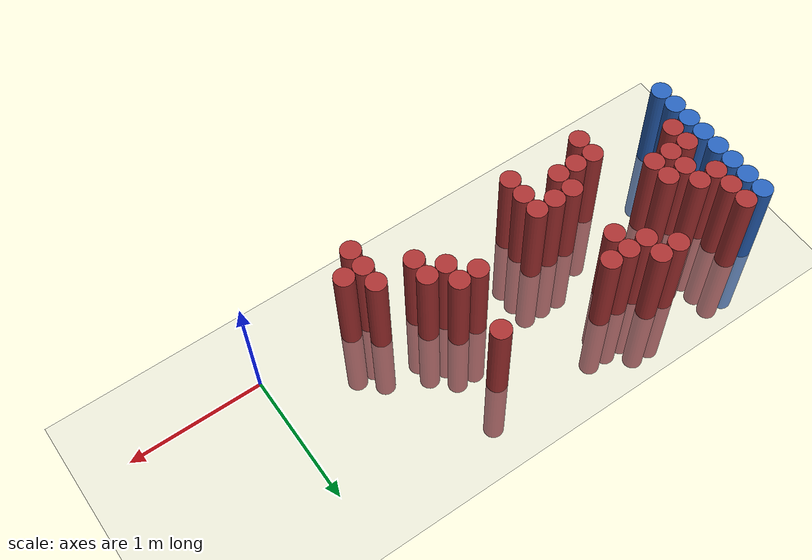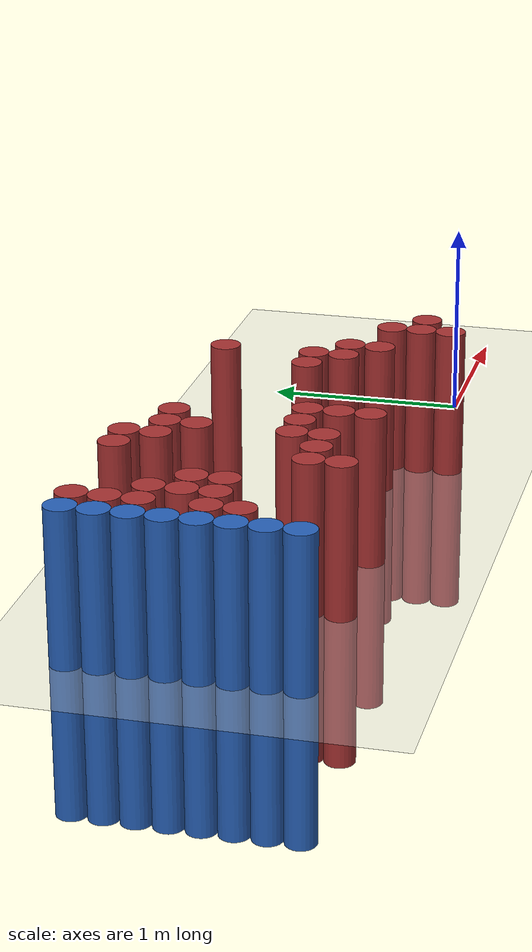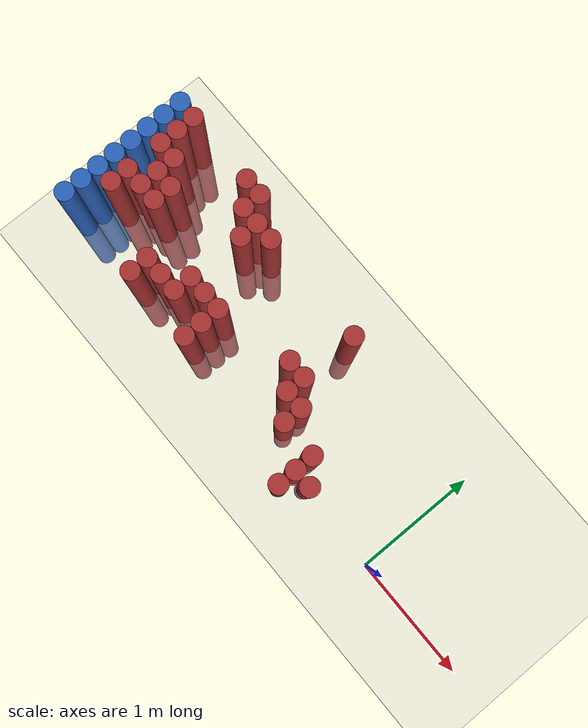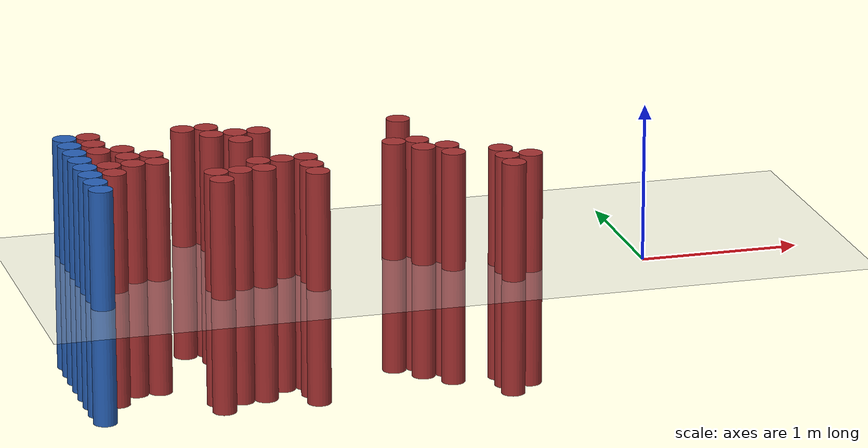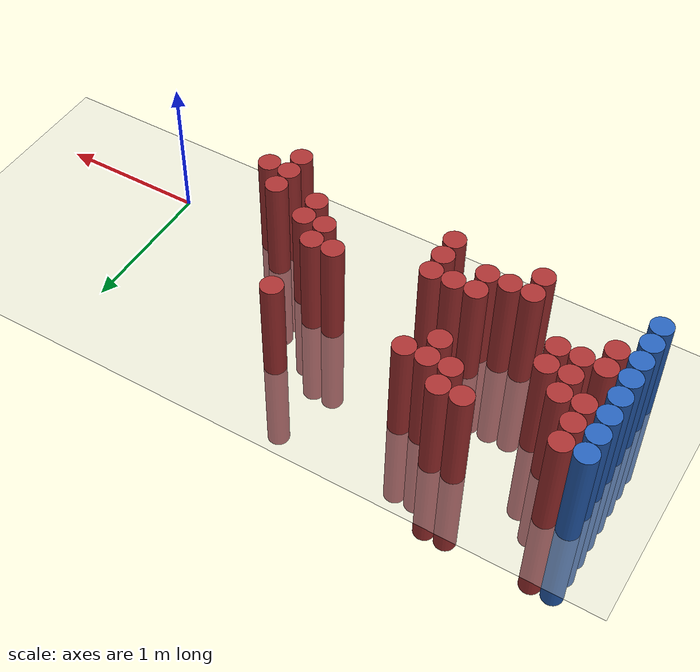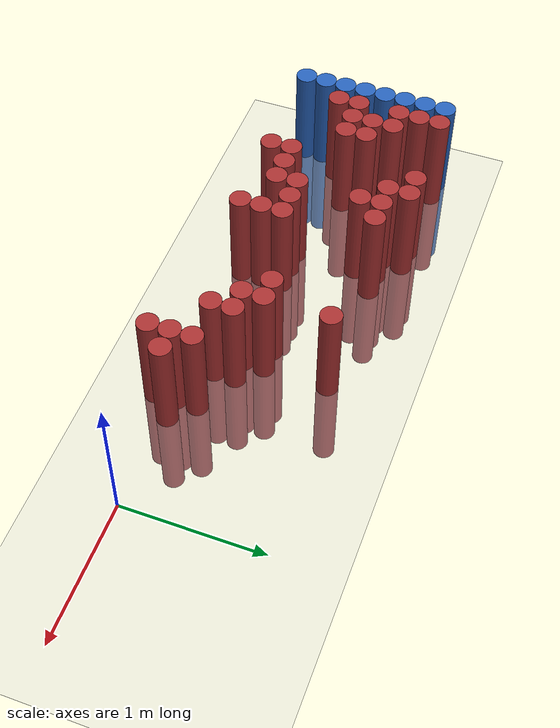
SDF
<sdf version="1.6">
 <world name="default">
  <model name="ground_plane">
   <static>1</static>
   <link name="link">
    <collision name="collision">
     <geometry><plane><normal>0 0 1</normal><size>100 100</size></plane></geometry>
     <surface><friction><ode><mu>100</mu><mu2>50</mu2></ode></friction></surface>
    </collision>
    <visual name="visual">
     <cast_shadows>0</cast_shadows>
     <geometry><plane><normal>0 0 1</normal><size>100 100</size></plane></geometry>
     <material>
      <script><uri>file://media/materials/scripts/gazebo.material</uri><name>Gazebo/Grey</name></script>
     </material>
    </visual>
   </link>
  </model>
  <model name="unit_cylinder_115">
   <static>1</static>
   <pose>-3.425000 0.025000 0.000000 0.000000 0.000000 0.000000</pose>
   <link name="link">
    <inertial>
     <mass>1</mass>
     <inertia><ixx>0.145833</ixx><ixy>0</ixy><ixz>0</ixz><iyy>0.145833</iyy><iyz>0</iyz><izz>0.125</izz></inertia>
    </inertial>
    <collision name="collision">
     <geometry><cylinder><radius>0.075000</radius><length>1.5</length></cylinder></geometry>
    </collision>
    <visual name="visual">
     <geometry><cylinder><radius>0.075000</radius><length>1.5</length></cylinder></geometry>
     <material>
      <ambient>0.152000 0.379000 0.720000 1</ambient>
      <diffuse>0.152000 0.379000 0.720000 1</diffuse>
     </material>
     <material>
      <script><name>Gazebo/Grey</name><uri>file://media/materials/scripts/gazebo.material</uri></script>
     </material>
    </visual>
   </link>
  </model>
  <model name="unit_cylinder_117">
   <static>1</static>
   <pose>-3.425000 0.175000 0.000000 0.000000 0.000000 0.000000</pose>
   <link name="link">
    <inertial>
     <mass>1</mass>
     <inertia><ixx>0.145833</ixx><ixy>0</ixy><ixz>0</ixz><iyy>0.145833</iyy><iyz>0</iyz><izz>0.125</izz></inertia>
    </inertial>
    <collision name="collision">
     <geometry><cylinder><radius>0.075000</radius><length>1.5</length></cylinder></geometry>
    </collision>
    <visual name="visual">
     <geometry><cylinder><radius>0.075000</radius><length>1.5</length></cylinder></geometry>
     <material>
      <ambient>0.152000 0.379000 0.720000 1</ambient>
      <diffuse>0.152000 0.379000 0.720000 1</diffuse>
     </material>
     <material>
      <script><name>Gazebo/Grey</name><uri>file://media/materials/scripts/gazebo.material</uri></script>
     </material>
    </visual>
   </link>
  </model>
  <model name="unit_cylinder_119">
   <static>1</static>
   <pose>-3.425000 0.325000 0.000000 0.000000 0.000000 0.000000</pose>
   <link name="link">
    <inertial>
     <mass>1</mass>
     <inertia><ixx>0.145833</ixx><ixy>0</ixy><ixz>0</ixz><iyy>0.145833</iyy><iyz>0</iyz><izz>0.125</izz></inertia>
    </inertial>
    <collision name="collision">
     <geometry><cylinder><radius>0.075000</radius><length>1.5</length></cylinder></geometry>
    </collision>
    <visual name="visual">
     <geometry><cylinder><radius>0.075000</radius><length>1.5</length></cylinder></geometry>
     <material>
      <ambient>0.152000 0.379000 0.720000 1</ambient>
      <diffuse>0.152000 0.379000 0.720000 1</diffuse>
     </material>
     <material>
      <script><name>Gazebo/Grey</name><uri>file://media/materials/scripts/gazebo.material</uri></script>
     </material>
    </visual>
   </link>
  </model>
  <model name="unit_cylinder_121">
   <static>1</static>
   <pose>-3.425000 0.475000 0.000000 0.000000 0.000000 0.000000</pose>
   <link name="link">
    <inertial>
     <mass>1</mass>
     <inertia><ixx>0.145833</ixx><ixy>0</ixy><ixz>0</ixz><iyy>0.145833</iyy><iyz>0</iyz><izz>0.125</izz></inertia>
    </inertial>
    <collision name="collision">
     <geometry><cylinder><radius>0.075000</radius><length>1.5</length></cylinder></geometry>
    </collision>
    <visual name="visual">
     <geometry><cylinder><radius>0.075000</radius><length>1.5</length></cylinder></geometry>
     <material>
      <ambient>0.152000 0.379000 0.720000 1</ambient>
      <diffuse>0.152000 0.379000 0.720000 1</diffuse>
     </material>
     <material>
      <script><name>Gazebo/Grey</name><uri>file://media/materials/scripts/gazebo.material</uri></script>
     </material>
    </visual>
   </link>
  </model>
  <model name="unit_cylinder_123">
   <static>1</static>
   <pose>-3.425000 0.625000 0.000000 0.000000 0.000000 0.000000</pose>
   <link name="link">
    <inertial>
     <mass>1</mass>
     <inertia><ixx>0.145833</ixx><ixy>0</ixy><ixz>0</ixz><iyy>0.145833</iyy><iyz>0</iyz><izz>0.125</izz></inertia>
    </inertial>
    <collision name="collision">
     <geometry><cylinder><radius>0.075000</radius><length>1.5</length></cylinder></geometry>
    </collision>
    <visual name="visual">
     <geometry><cylinder><radius>0.075000</radius><length>1.5</length></cylinder></geometry>
     <material>
      <ambient>0.152000 0.379000 0.720000 1</ambient>
      <diffuse>0.152000 0.379000 0.720000 1</diffuse>
     </material>
     <material>
      <script><name>Gazebo/Grey</name><uri>file://media/materials/scripts/gazebo.material</uri></script>
     </material>
    </visual>
   </link>
  </model>
  <model name="unit_cylinder_125">
   <static>1</static>
   <pose>-3.425000 0.775000 0.000000 0.000000 0.000000 0.000000</pose>
   <link name="link">
    <inertial>
     <mass>1</mass>
     <inertia><ixx>0.145833</ixx><ixy>0</ixy><ixz>0</ixz><iyy>0.145833</iyy><iyz>0</iyz><izz>0.125</izz></inertia>
    </inertial>
    <collision name="collision">
     <geometry><cylinder><radius>0.075000</radius><length>1.5</length></cylinder></geometry>
    </collision>
    <visual name="visual">
     <geometry><cylinder><radius>0.075000</radius><length>1.5</length></cylinder></geometry>
     <material>
      <ambient>0.152000 0.379000 0.720000 1</ambient>
      <diffuse>0.152000 0.379000 0.720000 1</diffuse>
     </material>
     <material>
      <script><name>Gazebo/Grey</name><uri>file://media/materials/scripts/gazebo.material</uri></script>
     </material>
    </visual>
   </link>
  </model>
  <model name="unit_cylinder_127">
   <static>1</static>
   <pose>-3.425000 0.925000 0.000000 0.000000 0.000000 0.000000</pose>
   <link name="link">
    <inertial>
     <mass>1</mass>
     <inertia><ixx>0.145833</ixx><ixy>0</ixy><ixz>0</ixz><iyy>0.145833</iyy><iyz>0</iyz><izz>0.125</izz></inertia>
    </inertial>
    <collision name="collision">
     <geometry><cylinder><radius>0.075000</radius><length>1.5</length></cylinder></geometry>
    </collision>
    <visual name="visual">
     <geometry><cylinder><radius>0.075000</radius><length>1.5</length></cylinder></geometry>
     <material>
      <ambient>0.152000 0.379000 0.720000 1</ambient>
      <diffuse>0.152000 0.379000 0.720000 1</diffuse>
     </material>
     <material>
      <script><name>Gazebo/Grey</name><uri>file://media/materials/scripts/gazebo.material</uri></script>
     </material>
    </visual>
   </link>
  </model>
  <model name="unit_cylinder_129">
   <static>1</static>
   <pose>-3.425000 1.075000 0.000000 0.000000 0.000000 0.000000</pose>
   <link name="link">
    <inertial>
     <mass>1</mass>
     <inertia><ixx>0.145833</ixx><ixy>0</ixy><ixz>0</ixz><iyy>0.145833</iyy><iyz>0</iyz><izz>0.125</izz></inertia>
    </inertial>
    <collision name="collision">
     <geometry><cylinder><radius>0.075000</radius><length>1.5</length></cylinder></geometry>
    </collision>
    <visual name="visual">
     <geometry><cylinder><radius>0.075000</radius><length>1.5</length></cylinder></geometry>
     <material>
      <ambient>0.152000 0.379000 0.720000 1</ambient>
      <diffuse>0.152000 0.379000 0.720000 1</diffuse>
     </material>
     <material>
      <script><name>Gazebo/Grey</name><uri>file://media/materials/scripts/gazebo.material</uri></script>
     </material>
    </visual>
   </link>
  </model>
  <model name="unit_cylinder_221">
   <static>1</static>
   <pose>-3.425000 0.025000 0.000000 0.000000 0.000000 0.000000</pose>
   <link name="link">
    <inertial>
     <mass>1</mass>
     <inertia><ixx>0.145833</ixx><ixy>0</ixy><ixz>0</ixz><iyy>0.145833</iyy><iyz>0</iyz><izz>0.125</izz></inertia>
    </inertial>
    <collision name="collision">
     <geometry><cylinder><radius>0.075000</radius><length>1.5</length></cylinder></geometry>
    </collision>
    <visual name="visual">
     <geometry><cylinder><radius>0.075000</radius><length>1.5</length></cylinder></geometry>
     <material>
      <ambient>0.152000 0.379000 0.720000 1</ambient>
      <diffuse>0.152000 0.379000 0.720000 1</diffuse>
     </material>
     <material>
      <script><name>Gazebo/Grey</name><uri>file://media/materials/scripts/gazebo.material</uri></script>
     </material>
    </visual>
   </link>
  </model>
  <model name="unit_cylinder_222">
   <static>1</static>
   <pose>-3.425000 0.175000 0.000000 0.000000 0.000000 0.000000</pose>
   <link name="link">
    <inertial>
     <mass>1</mass>
     <inertia><ixx>0.145833</ixx><ixy>0</ixy><ixz>0</ixz><iyy>0.145833</iyy><iyz>0</iyz><izz>0.125</izz></inertia>
    </inertial>
    <collision name="collision">
     <geometry><cylinder><radius>0.075000</radius><length>1.5</length></cylinder></geometry>
    </collision>
    <visual name="visual">
     <geometry><cylinder><radius>0.075000</radius><length>1.5</length></cylinder></geometry>
     <material>
      <ambient>0.152000 0.379000 0.720000 1</ambient>
      <diffuse>0.152000 0.379000 0.720000 1</diffuse>
     </material>
     <material>
      <script><name>Gazebo/Grey</name><uri>file://media/materials/scripts/gazebo.material</uri></script>
     </material>
    </visual>
   </link>
  </model>
  <model name="unit_cylinder_223">
   <static>1</static>
   <pose>-3.425000 0.325000 0.000000 0.000000 0.000000 0.000000</pose>
   <link name="link">
    <inertial>
     <mass>1</mass>
     <inertia><ixx>0.145833</ixx><ixy>0</ixy><ixz>0</ixz><iyy>0.145833</iyy><iyz>0</iyz><izz>0.125</izz></inertia>
    </inertial>
    <collision name="collision">
     <geometry><cylinder><radius>0.075000</radius><length>1.5</length></cylinder></geometry>
    </collision>
    <visual name="visual">
     <geometry><cylinder><radius>0.075000</radius><length>1.5</length></cylinder></geometry>
     <material>
      <ambient>0.152000 0.379000 0.720000 1</ambient>
      <diffuse>0.152000 0.379000 0.720000 1</diffuse>
     </material>
     <material>
      <script><name>Gazebo/Grey</name><uri>file://media/materials/scripts/gazebo.material</uri></script>
     </material>
    </visual>
   </link>
  </model>
  <model name="unit_cylinder_224">
   <static>1</static>
   <pose>-3.425000 0.475000 0.000000 0.000000 0.000000 0.000000</pose>
   <link name="link">
    <inertial>
     <mass>1</mass>
     <inertia><ixx>0.145833</ixx><ixy>0</ixy><ixz>0</ixz><iyy>0.145833</iyy><iyz>0</iyz><izz>0.125</izz></inertia>
    </inertial>
    <collision name="collision">
     <geometry><cylinder><radius>0.075000</radius><length>1.5</length></cylinder></geometry>
    </collision>
    <visual name="visual">
     <geometry><cylinder><radius>0.075000</radius><length>1.5</length></cylinder></geometry>
     <material>
      <ambient>0.152000 0.379000 0.720000 1</ambient>
      <diffuse>0.152000 0.379000 0.720000 1</diffuse>
     </material>
     <material>
      <script><name>Gazebo/Grey</name><uri>file://media/materials/scripts/gazebo.material</uri></script>
     </material>
    </visual>
   </link>
  </model>
  <model name="unit_cylinder_225">
   <static>1</static>
   <pose>-3.425000 0.625000 0.000000 0.000000 0.000000 0.000000</pose>
   <link name="link">
    <inertial>
     <mass>1</mass>
     <inertia><ixx>0.145833</ixx><ixy>0</ixy><ixz>0</ixz><iyy>0.145833</iyy><iyz>0</iyz><izz>0.125</izz></inertia>
    </inertial>
    <collision name="collision">
     <geometry><cylinder><radius>0.075000</radius><length>1.5</length></cylinder></geometry>
    </collision>
    <visual name="visual">
     <geometry><cylinder><radius>0.075000</radius><length>1.5</length></cylinder></geometry>
     <material>
      <ambient>0.152000 0.379000 0.720000 1</ambient>
      <diffuse>0.152000 0.379000 0.720000 1</diffuse>
     </material>
     <material>
      <script><name>Gazebo/Grey</name><uri>file://media/materials/scripts/gazebo.material</uri></script>
     </material>
    </visual>
   </link>
  </model>
  <model name="unit_cylinder_226">
   <static>1</static>
   <pose>-3.425000 0.775000 0.000000 0.000000 0.000000 0.000000</pose>
   <link name="link">
    <inertial>
     <mass>1</mass>
     <inertia><ixx>0.145833</ixx><ixy>0</ixy><ixz>0</ixz><iyy>0.145833</iyy><iyz>0</iyz><izz>0.125</izz></inertia>
    </inertial>
    <collision name="collision">
     <geometry><cylinder><radius>0.075000</radius><length>1.5</length></cylinder></geometry>
    </collision>
    <visual name="visual">
     <geometry><cylinder><radius>0.075000</radius><length>1.5</length></cylinder></geometry>
     <material>
      <ambient>0.152000 0.379000 0.720000 1</ambient>
      <diffuse>0.152000 0.379000 0.720000 1</diffuse>
     </material>
     <material>
      <script><name>Gazebo/Grey</name><uri>file://media/materials/scripts/gazebo.material</uri></script>
     </material>
    </visual>
   </link>
  </model>
  <model name="unit_cylinder_227">
   <static>1</static>
   <pose>-3.425000 0.925000 0.000000 0.000000 0.000000 0.000000</pose>
   <link name="link">
    <inertial>
     <mass>1</mass>
     <inertia><ixx>0.145833</ixx><ixy>0</ixy><ixz>0</ixz><iyy>0.145833</iyy><iyz>0</iyz><izz>0.125</izz></inertia>
    </inertial>
    <collision name="collision">
     <geometry><cylinder><radius>0.075000</radius><length>1.5</length></cylinder></geometry>
    </collision>
    <visual name="visual">
     <geometry><cylinder><radius>0.075000</radius><length>1.5</length></cylinder></geometry>
     <material>
      <ambient>0.152000 0.379000 0.720000 1</ambient>
      <diffuse>0.152000 0.379000 0.720000 1</diffuse>
     </material>
     <material>
      <script><name>Gazebo/Grey</name><uri>file://media/materials/scripts/gazebo.material</uri></script>
     </material>
    </visual>
   </link>
  </model>
  <model name="unit_cylinder_228">
   <static>1</static>
   <pose>-3.425000 1.075000 0.000000 0.000000 0.000000 0.000000</pose>
   <link name="link">
    <inertial>
     <mass>1</mass>
     <inertia><ixx>0.145833</ixx><ixy>0</ixy><ixz>0</ixz><iyy>0.145833</iyy><iyz>0</iyz><izz>0.125</izz></inertia>
    </inertial>
    <collision name="collision">
     <geometry><cylinder><radius>0.075000</radius><length>1.5</length></cylinder></geometry>
    </collision>
    <visual name="visual">
     <geometry><cylinder><radius>0.075000</radius><length>1.5</length></cylinder></geometry>
     <material>
      <ambient>0.152000 0.379000 0.720000 1</ambient>
      <diffuse>0.152000 0.379000 0.720000 1</diffuse>
     </material>
     <material>
      <script><name>Gazebo/Grey</name><uri>file://media/materials/scripts/gazebo.material</uri></script>
     </material>
    </visual>
   </link>
  </model>
  <model name="unit_cylinder_262">
   <static>1</static>
   <pose>-3.275000 0.325000 0.000000 0.000000 0.000000 0.000000</pose>
   <link name="link">
    <inertial>
     <mass>1</mass>
     <inertia><ixx>0.145833</ixx><ixy>0</ixy><ixz>0</ixz><iyy>0.145833</iyy><iyz>0</iyz><izz>0.125</izz></inertia>
    </inertial>
    <collision name="collision">
     <geometry><cylinder><radius>0.075000</radius><length>1.5</length></cylinder></geometry>
    </collision>
    <visual name="visual">
     <geometry><cylinder><radius>0.075000</radius><length>1.5</length></cylinder></geometry>
     <material>
      <ambient>0.648000 0.192000 0.192000 1</ambient>
      <diffuse>0.648000 0.192000 0.192000 1</diffuse>
     </material>
     <material>
      <script><name>Gazebo/Grey</name><uri>file://media/materials/scripts/gazebo.material</uri></script>
     </material>
    </visual>
   </link>
  </model>
  <model name="unit_cylinder_263">
   <static>1</static>
   <pose>-3.275000 0.475000 0.000000 0.000000 0.000000 0.000000</pose>
   <link name="link">
    <inertial>
     <mass>1</mass>
     <inertia><ixx>0.145833</ixx><ixy>0</ixy><ixz>0</ixz><iyy>0.145833</iyy><iyz>0</iyz><izz>0.125</izz></inertia>
    </inertial>
    <collision name="collision">
     <geometry><cylinder><radius>0.075000</radius><length>1.5</length></cylinder></geometry>
    </collision>
    <visual name="visual">
     <geometry><cylinder><radius>0.075000</radius><length>1.5</length></cylinder></geometry>
     <material>
      <ambient>0.648000 0.192000 0.192000 1</ambient>
      <diffuse>0.648000 0.192000 0.192000 1</diffuse>
     </material>
     <material>
      <script><name>Gazebo/Grey</name><uri>file://media/materials/scripts/gazebo.material</uri></script>
     </material>
    </visual>
   </link>
  </model>
  <model name="unit_cylinder_264">
   <static>1</static>
   <pose>-3.275000 0.775000 0.000000 0.000000 0.000000 0.000000</pose>
   <link name="link">
    <inertial>
     <mass>1</mass>
     <inertia><ixx>0.145833</ixx><ixy>0</ixy><ixz>0</ixz><iyy>0.145833</iyy><iyz>0</iyz><izz>0.125</izz></inertia>
    </inertial>
    <collision name="collision">
     <geometry><cylinder><radius>0.075000</radius><length>1.5</length></cylinder></geometry>
    </collision>
    <visual name="visual">
     <geometry><cylinder><radius>0.075000</radius><length>1.5</length></cylinder></geometry>
     <material>
      <ambient>0.648000 0.192000 0.192000 1</ambient>
      <diffuse>0.648000 0.192000 0.192000 1</diffuse>
     </material>
     <material>
      <script><name>Gazebo/Grey</name><uri>file://media/materials/scripts/gazebo.material</uri></script>
     </material>
    </visual>
   </link>
  </model>
  <model name="unit_cylinder_265">
   <static>1</static>
   <pose>-3.275000 0.925000 0.000000 0.000000 0.000000 0.000000</pose>
   <link name="link">
    <inertial>
     <mass>1</mass>
     <inertia><ixx>0.145833</ixx><ixy>0</ixy><ixz>0</ixz><iyy>0.145833</iyy><iyz>0</iyz><izz>0.125</izz></inertia>
    </inertial>
    <collision name="collision">
     <geometry><cylinder><radius>0.075000</radius><length>1.5</length></cylinder></geometry>
    </collision>
    <visual name="visual">
     <geometry><cylinder><radius>0.075000</radius><length>1.5</length></cylinder></geometry>
     <material>
      <ambient>0.648000 0.192000 0.192000 1</ambient>
      <diffuse>0.648000 0.192000 0.192000 1</diffuse>
     </material>
     <material>
      <script><name>Gazebo/Grey</name><uri>file://media/materials/scripts/gazebo.material</uri></script>
     </material>
    </visual>
   </link>
  </model>
  <model name="unit_cylinder_266">
   <static>1</static>
   <pose>-3.275000 1.075000 0.000000 0.000000 0.000000 0.000000</pose>
   <link name="link">
    <inertial>
     <mass>1</mass>
     <inertia><ixx>0.145833</ixx><ixy>0</ixy><ixz>0</ixz><iyy>0.145833</iyy><iyz>0</iyz><izz>0.125</izz></inertia>
    </inertial>
    <collision name="collision">
     <geometry><cylinder><radius>0.075000</radius><length>1.5</length></cylinder></geometry>
    </collision>
    <visual name="visual">
     <geometry><cylinder><radius>0.075000</radius><length>1.5</length></cylinder></geometry>
     <material>
      <ambient>0.648000 0.192000 0.192000 1</ambient>
      <diffuse>0.648000 0.192000 0.192000 1</diffuse>
     </material>
     <material>
      <script><name>Gazebo/Grey</name><uri>file://media/materials/scripts/gazebo.material</uri></script>
     </material>
    </visual>
   </link>
  </model>
  <model name="unit_cylinder_278">
   <static>1</static>
   <pose>-3.125000 0.475000 0.000000 0.000000 0.000000 0.000000</pose>
   <link name="link">
    <inertial>
     <mass>1</mass>
     <inertia><ixx>0.145833</ixx><ixy>0</ixy><ixz>0</ixz><iyy>0.145833</iyy><iyz>0</iyz><izz>0.125</izz></inertia>
    </inertial>
    <collision name="collision">
     <geometry><cylinder><radius>0.075000</radius><length>1.5</length></cylinder></geometry>
    </collision>
    <visual name="visual">
     <geometry><cylinder><radius>0.075000</radius><length>1.5</length></cylinder></geometry>
     <material>
      <ambient>0.648000 0.192000 0.192000 1</ambient>
      <diffuse>0.648000 0.192000 0.192000 1</diffuse>
     </material>
     <material>
      <script><name>Gazebo/Grey</name><uri>file://media/materials/scripts/gazebo.material</uri></script>
     </material>
    </visual>
   </link>
  </model>
  <model name="unit_cylinder_279">
   <static>1</static>
   <pose>-3.125000 0.625000 0.000000 0.000000 0.000000 0.000000</pose>
   <link name="link">
    <inertial>
     <mass>1</mass>
     <inertia><ixx>0.145833</ixx><ixy>0</ixy><ixz>0</ixz><iyy>0.145833</iyy><iyz>0</iyz><izz>0.125</izz></inertia>
    </inertial>
    <collision name="collision">
     <geometry><cylinder><radius>0.075000</radius><length>1.5</length></cylinder></geometry>
    </collision>
    <visual name="visual">
     <geometry><cylinder><radius>0.075000</radius><length>1.5</length></cylinder></geometry>
     <material>
      <ambient>0.648000 0.192000 0.192000 1</ambient>
      <diffuse>0.648000 0.192000 0.192000 1</diffuse>
     </material>
     <material>
      <script><name>Gazebo/Grey</name><uri>file://media/materials/scripts/gazebo.material</uri></script>
     </material>
    </visual>
   </link>
  </model>
  <model name="unit_cylinder_280">
   <static>1</static>
   <pose>-3.125000 0.775000 0.000000 0.000000 0.000000 0.000000</pose>
   <link name="link">
    <inertial>
     <mass>1</mass>
     <inertia><ixx>0.145833</ixx><ixy>0</ixy><ixz>0</ixz><iyy>0.145833</iyy><iyz>0</iyz><izz>0.125</izz></inertia>
    </inertial>
    <collision name="collision">
     <geometry><cylinder><radius>0.075000</radius><length>1.5</length></cylinder></geometry>
    </collision>
    <visual name="visual">
     <geometry><cylinder><radius>0.075000</radius><length>1.5</length></cylinder></geometry>
     <material>
      <ambient>0.648000 0.192000 0.192000 1</ambient>
      <diffuse>0.648000 0.192000 0.192000 1</diffuse>
     </material>
     <material>
      <script><name>Gazebo/Grey</name><uri>file://media/materials/scripts/gazebo.material</uri></script>
     </material>
    </visual>
   </link>
  </model>
  <model name="unit_cylinder_285">
   <static>1</static>
   <pose>-2.975000 0.475000 0.000000 0.000000 0.000000 0.000000</pose>
   <link name="link">
    <inertial>
     <mass>1</mass>
     <inertia><ixx>0.145833</ixx><ixy>0</ixy><ixz>0</ixz><iyy>0.145833</iyy><iyz>0</iyz><izz>0.125</izz></inertia>
    </inertial>
    <collision name="collision">
     <geometry><cylinder><radius>0.075000</radius><length>1.5</length></cylinder></geometry>
    </collision>
    <visual name="visual">
     <geometry><cylinder><radius>0.075000</radius><length>1.5</length></cylinder></geometry>
     <material>
      <ambient>0.648000 0.192000 0.192000 1</ambient>
      <diffuse>0.648000 0.192000 0.192000 1</diffuse>
     </material>
     <material>
      <script><name>Gazebo/Grey</name><uri>file://media/materials/scripts/gazebo.material</uri></script>
     </material>
    </visual>
   </link>
  </model>
  <model name="unit_cylinder_286">
   <static>1</static>
   <pose>-2.975000 0.625000 0.000000 0.000000 0.000000 0.000000</pose>
   <link name="link">
    <inertial>
     <mass>1</mass>
     <inertia><ixx>0.145833</ixx><ixy>0</ixy><ixz>0</ixz><iyy>0.145833</iyy><iyz>0</iyz><izz>0.125</izz></inertia>
    </inertial>
    <collision name="collision">
     <geometry><cylinder><radius>0.075000</radius><length>1.5</length></cylinder></geometry>
    </collision>
    <visual name="visual">
     <geometry><cylinder><radius>0.075000</radius><length>1.5</length></cylinder></geometry>
     <material>
      <ambient>0.648000 0.192000 0.192000 1</ambient>
      <diffuse>0.648000 0.192000 0.192000 1</diffuse>
     </material>
     <material>
      <script><name>Gazebo/Grey</name><uri>file://media/materials/scripts/gazebo.material</uri></script>
     </material>
    </visual>
   </link>
  </model>
  <model name="unit_cylinder_300">
   <static>1</static>
   <pose>-2.675000 0.025000 0.000000 0.000000 0.000000 0.000000</pose>
   <link name="link">
    <inertial>
     <mass>1</mass>
     <inertia><ixx>0.145833</ixx><ixy>0</ixy><ixz>0</ixz><iyy>0.145833</iyy><iyz>0</iyz><izz>0.125</izz></inertia>
    </inertial>
    <collision name="collision">
     <geometry><cylinder><radius>0.075000</radius><length>1.5</length></cylinder></geometry>
    </collision>
    <visual name="visual">
     <geometry><cylinder><radius>0.075000</radius><length>1.5</length></cylinder></geometry>
     <material>
      <ambient>0.648000 0.192000 0.192000 1</ambient>
      <diffuse>0.648000 0.192000 0.192000 1</diffuse>
     </material>
     <material>
      <script><name>Gazebo/Grey</name><uri>file://media/materials/scripts/gazebo.material</uri></script>
     </material>
    </visual>
   </link>
  </model>
  <model name="unit_cylinder_301">
   <static>1</static>
   <pose>-2.675000 0.175000 0.000000 0.000000 0.000000 0.000000</pose>
   <link name="link">
    <inertial>
     <mass>1</mass>
     <inertia><ixx>0.145833</ixx><ixy>0</ixy><ixz>0</ixz><iyy>0.145833</iyy><iyz>0</iyz><izz>0.125</izz></inertia>
    </inertial>
    <collision name="collision">
     <geometry><cylinder><radius>0.075000</radius><length>1.5</length></cylinder></geometry>
    </collision>
    <visual name="visual">
     <geometry><cylinder><radius>0.075000</radius><length>1.5</length></cylinder></geometry>
     <material>
      <ambient>0.648000 0.192000 0.192000 1</ambient>
      <diffuse>0.648000 0.192000 0.192000 1</diffuse>
     </material>
     <material>
      <script><name>Gazebo/Grey</name><uri>file://media/materials/scripts/gazebo.material</uri></script>
     </material>
    </visual>
   </link>
  </model>
  <model name="unit_cylinder_302">
   <static>1</static>
   <pose>-2.675000 1.075000 0.000000 0.000000 0.000000 0.000000</pose>
   <link name="link">
    <inertial>
     <mass>1</mass>
     <inertia><ixx>0.145833</ixx><ixy>0</ixy><ixz>0</ixz><iyy>0.145833</iyy><iyz>0</iyz><izz>0.125</izz></inertia>
    </inertial>
    <collision name="collision">
     <geometry><cylinder><radius>0.075000</radius><length>1.5</length></cylinder></geometry>
    </collision>
    <visual name="visual">
     <geometry><cylinder><radius>0.075000</radius><length>1.5</length></cylinder></geometry>
     <material>
      <ambient>0.648000 0.192000 0.192000 1</ambient>
      <diffuse>0.648000 0.192000 0.192000 1</diffuse>
     </material>
     <material>
      <script><name>Gazebo/Grey</name><uri>file://media/materials/scripts/gazebo.material</uri></script>
     </material>
    </visual>
   </link>
  </model>
  <model name="unit_cylinder_314">
   <static>1</static>
   <pose>-2.525000 0.175000 0.000000 0.000000 0.000000 0.000000</pose>
   <link name="link">
    <inertial>
     <mass>1</mass>
     <inertia><ixx>0.145833</ixx><ixy>0</ixy><ixz>0</ixz><iyy>0.145833</iyy><iyz>0</iyz><izz>0.125</izz></inertia>
    </inertial>
    <collision name="collision">
     <geometry><cylinder><radius>0.075000</radius><length>1.5</length></cylinder></geometry>
    </collision>
    <visual name="visual">
     <geometry><cylinder><radius>0.075000</radius><length>1.5</length></cylinder></geometry>
     <material>
      <ambient>0.648000 0.192000 0.192000 1</ambient>
      <diffuse>0.648000 0.192000 0.192000 1</diffuse>
     </material>
     <material>
      <script><name>Gazebo/Grey</name><uri>file://media/materials/scripts/gazebo.material</uri></script>
     </material>
    </visual>
   </link>
  </model>
  <model name="unit_cylinder_315">
   <static>1</static>
   <pose>-2.525000 0.925000 0.000000 0.000000 0.000000 0.000000</pose>
   <link name="link">
    <inertial>
     <mass>1</mass>
     <inertia><ixx>0.145833</ixx><ixy>0</ixy><ixz>0</ixz><iyy>0.145833</iyy><iyz>0</iyz><izz>0.125</izz></inertia>
    </inertial>
    <collision name="collision">
     <geometry><cylinder><radius>0.075000</radius><length>1.5</length></cylinder></geometry>
    </collision>
    <visual name="visual">
     <geometry><cylinder><radius>0.075000</radius><length>1.5</length></cylinder></geometry>
     <material>
      <ambient>0.648000 0.192000 0.192000 1</ambient>
      <diffuse>0.648000 0.192000 0.192000 1</diffuse>
     </material>
     <material>
      <script><name>Gazebo/Grey</name><uri>file://media/materials/scripts/gazebo.material</uri></script>
     </material>
    </visual>
   </link>
  </model>
  <model name="unit_cylinder_316">
   <static>1</static>
   <pose>-2.525000 1.075000 0.000000 0.000000 0.000000 0.000000</pose>
   <link name="link">
    <inertial>
     <mass>1</mass>
     <inertia><ixx>0.145833</ixx><ixy>0</ixy><ixz>0</ixz><iyy>0.145833</iyy><iyz>0</iyz><izz>0.125</izz></inertia>
    </inertial>
    <collision name="collision">
     <geometry><cylinder><radius>0.075000</radius><length>1.5</length></cylinder></geometry>
    </collision>
    <visual name="visual">
     <geometry><cylinder><radius>0.075000</radius><length>1.5</length></cylinder></geometry>
     <material>
      <ambient>0.648000 0.192000 0.192000 1</ambient>
      <diffuse>0.648000 0.192000 0.192000 1</diffuse>
     </material>
     <material>
      <script><name>Gazebo/Grey</name><uri>file://media/materials/scripts/gazebo.material</uri></script>
     </material>
    </visual>
   </link>
  </model>
  <model name="unit_cylinder_327">
   <static>1</static>
   <pose>-2.375000 0.175000 0.000000 0.000000 0.000000 0.000000</pose>
   <link name="link">
    <inertial>
     <mass>1</mass>
     <inertia><ixx>0.145833</ixx><ixy>0</ixy><ixz>0</ixz><iyy>0.145833</iyy><iyz>0</iyz><izz>0.125</izz></inertia>
    </inertial>
    <collision name="collision">
     <geometry><cylinder><radius>0.075000</radius><length>1.5</length></cylinder></geometry>
    </collision>
    <visual name="visual">
     <geometry><cylinder><radius>0.075000</radius><length>1.5</length></cylinder></geometry>
     <material>
      <ambient>0.648000 0.192000 0.192000 1</ambient>
      <diffuse>0.648000 0.192000 0.192000 1</diffuse>
     </material>
     <material>
      <script><name>Gazebo/Grey</name><uri>file://media/materials/scripts/gazebo.material</uri></script>
     </material>
    </visual>
   </link>
  </model>
  <model name="unit_cylinder_328">
   <static>1</static>
   <pose>-2.375000 0.325000 0.000000 0.000000 0.000000 0.000000</pose>
   <link name="link">
    <inertial>
     <mass>1</mass>
     <inertia><ixx>0.145833</ixx><ixy>0</ixy><ixz>0</ixz><iyy>0.145833</iyy><iyz>0</iyz><izz>0.125</izz></inertia>
    </inertial>
    <collision name="collision">
     <geometry><cylinder><radius>0.075000</radius><length>1.5</length></cylinder></geometry>
    </collision>
    <visual name="visual">
     <geometry><cylinder><radius>0.075000</radius><length>1.5</length></cylinder></geometry>
     <material>
      <ambient>0.648000 0.192000 0.192000 1</ambient>
      <diffuse>0.648000 0.192000 0.192000 1</diffuse>
     </material>
     <material>
      <script><name>Gazebo/Grey</name><uri>file://media/materials/scripts/gazebo.material</uri></script>
     </material>
    </visual>
   </link>
  </model>
  <model name="unit_cylinder_329">
   <static>1</static>
   <pose>-2.375000 0.775000 0.000000 0.000000 0.000000 0.000000</pose>
   <link name="link">
    <inertial>
     <mass>1</mass>
     <inertia><ixx>0.145833</ixx><ixy>0</ixy><ixz>0</ixz><iyy>0.145833</iyy><iyz>0</iyz><izz>0.125</izz></inertia>
    </inertial>
    <collision name="collision">
     <geometry><cylinder><radius>0.075000</radius><length>1.5</length></cylinder></geometry>
    </collision>
    <visual name="visual">
     <geometry><cylinder><radius>0.075000</radius><length>1.5</length></cylinder></geometry>
     <material>
      <ambient>0.648000 0.192000 0.192000 1</ambient>
      <diffuse>0.648000 0.192000 0.192000 1</diffuse>
     </material>
     <material>
      <script><name>Gazebo/Grey</name><uri>file://media/materials/scripts/gazebo.material</uri></script>
     </material>
    </visual>
   </link>
  </model>
  <model name="unit_cylinder_330">
   <static>1</static>
   <pose>-2.375000 0.925000 0.000000 0.000000 0.000000 0.000000</pose>
   <link name="link">
    <inertial>
     <mass>1</mass>
     <inertia><ixx>0.145833</ixx><ixy>0</ixy><ixz>0</ixz><iyy>0.145833</iyy><iyz>0</iyz><izz>0.125</izz></inertia>
    </inertial>
    <collision name="collision">
     <geometry><cylinder><radius>0.075000</radius><length>1.5</length></cylinder></geometry>
    </collision>
    <visual name="visual">
     <geometry><cylinder><radius>0.075000</radius><length>1.5</length></cylinder></geometry>
     <material>
      <ambient>0.648000 0.192000 0.192000 1</ambient>
      <diffuse>0.648000 0.192000 0.192000 1</diffuse>
     </material>
     <material>
      <script><name>Gazebo/Grey</name><uri>file://media/materials/scripts/gazebo.material</uri></script>
     </material>
    </visual>
   </link>
  </model>
  <model name="unit_cylinder_340">
   <static>1</static>
   <pose>-2.225000 0.325000 0.000000 0.000000 0.000000 0.000000</pose>
   <link name="link">
    <inertial>
     <mass>1</mass>
     <inertia><ixx>0.145833</ixx><ixy>0</ixy><ixz>0</ixz><iyy>0.145833</iyy><iyz>0</iyz><izz>0.125</izz></inertia>
    </inertial>
    <collision name="collision">
     <geometry><cylinder><radius>0.075000</radius><length>1.5</length></cylinder></geometry>
    </collision>
    <visual name="visual">
     <geometry><cylinder><radius>0.075000</radius><length>1.5</length></cylinder></geometry>
     <material>
      <ambient>0.648000 0.192000 0.192000 1</ambient>
      <diffuse>0.648000 0.192000 0.192000 1</diffuse>
     </material>
     <material>
      <script><name>Gazebo/Grey</name><uri>file://media/materials/scripts/gazebo.material</uri></script>
     </material>
    </visual>
   </link>
  </model>
  <model name="unit_cylinder_341">
   <static>1</static>
   <pose>-2.225000 0.925000 0.000000 0.000000 0.000000 0.000000</pose>
   <link name="link">
    <inertial>
     <mass>1</mass>
     <inertia><ixx>0.145833</ixx><ixy>0</ixy><ixz>0</ixz><iyy>0.145833</iyy><iyz>0</iyz><izz>0.125</izz></inertia>
    </inertial>
    <collision name="collision">
     <geometry><cylinder><radius>0.075000</radius><length>1.5</length></cylinder></geometry>
    </collision>
    <visual name="visual">
     <geometry><cylinder><radius>0.075000</radius><length>1.5</length></cylinder></geometry>
     <material>
      <ambient>0.648000 0.192000 0.192000 1</ambient>
      <diffuse>0.648000 0.192000 0.192000 1</diffuse>
     </material>
     <material>
      <script><name>Gazebo/Grey</name><uri>file://media/materials/scripts/gazebo.material</uri></script>
     </material>
    </visual>
   </link>
  </model>
  <model name="unit_cylinder_349">
   <static>1</static>
   <pose>-2.075000 0.025000 0.000000 0.000000 0.000000 0.000000</pose>
   <link name="link">
    <inertial>
     <mass>1</mass>
     <inertia><ixx>0.145833</ixx><ixy>0</ixy><ixz>0</ixz><iyy>0.145833</iyy><iyz>0</iyz><izz>0.125</izz></inertia>
    </inertial>
    <collision name="collision">
     <geometry><cylinder><radius>0.075000</radius><length>1.5</length></cylinder></geometry>
    </collision>
    <visual name="visual">
     <geometry><cylinder><radius>0.075000</radius><length>1.5</length></cylinder></geometry>
     <material>
      <ambient>0.648000 0.192000 0.192000 1</ambient>
      <diffuse>0.648000 0.192000 0.192000 1</diffuse>
     </material>
     <material>
      <script><name>Gazebo/Grey</name><uri>file://media/materials/scripts/gazebo.material</uri></script>
     </material>
    </visual>
   </link>
  </model>
  <model name="unit_cylinder_350">
   <static>1</static>
   <pose>-2.075000 0.175000 0.000000 0.000000 0.000000 0.000000</pose>
   <link name="link">
    <inertial>
     <mass>1</mass>
     <inertia><ixx>0.145833</ixx><ixy>0</ixy><ixz>0</ixz><iyy>0.145833</iyy><iyz>0</iyz><izz>0.125</izz></inertia>
    </inertial>
    <collision name="collision">
     <geometry><cylinder><radius>0.075000</radius><length>1.5</length></cylinder></geometry>
    </collision>
    <visual name="visual">
     <geometry><cylinder><radius>0.075000</radius><length>1.5</length></cylinder></geometry>
     <material>
      <ambient>0.648000 0.192000 0.192000 1</ambient>
      <diffuse>0.648000 0.192000 0.192000 1</diffuse>
     </material>
     <material>
      <script><name>Gazebo/Grey</name><uri>file://media/materials/scripts/gazebo.material</uri></script>
     </material>
    </visual>
   </link>
  </model>
  <model name="unit_cylinder_351">
   <static>1</static>
   <pose>-2.075000 0.325000 0.000000 0.000000 0.000000 0.000000</pose>
   <link name="link">
    <inertial>
     <mass>1</mass>
     <inertia><ixx>0.145833</ixx><ixy>0</ixy><ixz>0</ixz><iyy>0.145833</iyy><iyz>0</iyz><izz>0.125</izz></inertia>
    </inertial>
    <collision name="collision">
     <geometry><cylinder><radius>0.075000</radius><length>1.5</length></cylinder></geometry>
    </collision>
    <visual name="visual">
     <geometry><cylinder><radius>0.075000</radius><length>1.5</length></cylinder></geometry>
     <material>
      <ambient>0.648000 0.192000 0.192000 1</ambient>
      <diffuse>0.648000 0.192000 0.192000 1</diffuse>
     </material>
     <material>
      <script><name>Gazebo/Grey</name><uri>file://media/materials/scripts/gazebo.material</uri></script>
     </material>
    </visual>
   </link>
  </model>
  <model name="unit_cylinder_370">
   <static>1</static>
   <pose>-1.475000 0.475000 0.000000 0.000000 0.000000 0.000000</pose>
   <link name="link">
    <inertial>
     <mass>1</mass>
     <inertia><ixx>0.145833</ixx><ixy>0</ixy><ixz>0</ixz><iyy>0.145833</iyy><iyz>0</iyz><izz>0.125</izz></inertia>
    </inertial>
    <collision name="collision">
     <geometry><cylinder><radius>0.075000</radius><length>1.5</length></cylinder></geometry>
    </collision>
    <visual name="visual">
     <geometry><cylinder><radius>0.075000</radius><length>1.5</length></cylinder></geometry>
     <material>
      <ambient>0.648000 0.192000 0.192000 1</ambient>
      <diffuse>0.648000 0.192000 0.192000 1</diffuse>
     </material>
     <material>
      <script><name>Gazebo/Grey</name><uri>file://media/materials/scripts/gazebo.material</uri></script>
     </material>
    </visual>
   </link>
  </model>
  <model name="unit_cylinder_374">
   <static>1</static>
   <pose>-1.325000 0.325000 0.000000 0.000000 0.000000 0.000000</pose>
   <link name="link">
    <inertial>
     <mass>1</mass>
     <inertia><ixx>0.145833</ixx><ixy>0</ixy><ixz>0</ixz><iyy>0.145833</iyy><iyz>0</iyz><izz>0.125</izz></inertia>
    </inertial>
    <collision name="collision">
     <geometry><cylinder><radius>0.075000</radius><length>1.5</length></cylinder></geometry>
    </collision>
    <visual name="visual">
     <geometry><cylinder><radius>0.075000</radius><length>1.5</length></cylinder></geometry>
     <material>
      <ambient>0.648000 0.192000 0.192000 1</ambient>
      <diffuse>0.648000 0.192000 0.192000 1</diffuse>
     </material>
     <material>
      <script><name>Gazebo/Grey</name><uri>file://media/materials/scripts/gazebo.material</uri></script>
     </material>
    </visual>
   </link>
  </model>
  <model name="unit_cylinder_375">
   <static>1</static>
   <pose>-1.325000 0.475000 0.000000 0.000000 0.000000 0.000000</pose>
   <link name="link">
    <inertial>
     <mass>1</mass>
     <inertia><ixx>0.145833</ixx><ixy>0</ixy><ixz>0</ixz><iyy>0.145833</iyy><iyz>0</iyz><izz>0.125</izz></inertia>
    </inertial>
    <collision name="collision">
     <geometry><cylinder><radius>0.075000</radius><length>1.5</length></cylinder></geometry>
    </collision>
    <visual name="visual">
     <geometry><cylinder><radius>0.075000</radius><length>1.5</length></cylinder></geometry>
     <material>
      <ambient>0.648000 0.192000 0.192000 1</ambient>
      <diffuse>0.648000 0.192000 0.192000 1</diffuse>
     </material>
     <material>
      <script><name>Gazebo/Grey</name><uri>file://media/materials/scripts/gazebo.material</uri></script>
     </material>
    </visual>
   </link>
  </model>
  <model name="unit_cylinder_376">
   <static>1</static>
   <pose>-1.325000 0.925000 0.000000 0.000000 0.000000 0.000000</pose>
   <link name="link">
    <inertial>
     <mass>1</mass>
     <inertia><ixx>0.145833</ixx><ixy>0</ixy><ixz>0</ixz><iyy>0.145833</iyy><iyz>0</iyz><izz>0.125</izz></inertia>
    </inertial>
    <collision name="collision">
     <geometry><cylinder><radius>0.075000</radius><length>1.5</length></cylinder></geometry>
    </collision>
    <visual name="visual">
     <geometry><cylinder><radius>0.075000</radius><length>1.5</length></cylinder></geometry>
     <material>
      <ambient>0.648000 0.192000 0.192000 1</ambient>
      <diffuse>0.648000 0.192000 0.192000 1</diffuse>
     </material>
     <material>
      <script><name>Gazebo/Grey</name><uri>file://media/materials/scripts/gazebo.material</uri></script>
     </material>
    </visual>
   </link>
  </model>
  <model name="unit_cylinder_380">
   <static>1</static>
   <pose>-1.175000 0.175000 0.000000 0.000000 0.000000 0.000000</pose>
   <link name="link">
    <inertial>
     <mass>1</mass>
     <inertia><ixx>0.145833</ixx><ixy>0</ixy><ixz>0</ixz><iyy>0.145833</iyy><iyz>0</iyz><izz>0.125</izz></inertia>
    </inertial>
    <collision name="collision">
     <geometry><cylinder><radius>0.075000</radius><length>1.5</length></cylinder></geometry>
    </collision>
    <visual name="visual">
     <geometry><cylinder><radius>0.075000</radius><length>1.5</length></cylinder></geometry>
     <material>
      <ambient>0.648000 0.192000 0.192000 1</ambient>
      <diffuse>0.648000 0.192000 0.192000 1</diffuse>
     </material>
     <material>
      <script><name>Gazebo/Grey</name><uri>file://media/materials/scripts/gazebo.material</uri></script>
     </material>
    </visual>
   </link>
  </model>
  <model name="unit_cylinder_381">
   <static>1</static>
   <pose>-1.175000 0.325000 0.000000 0.000000 0.000000 0.000000</pose>
   <link name="link">
    <inertial>
     <mass>1</mass>
     <inertia><ixx>0.145833</ixx><ixy>0</ixy><ixz>0</ixz><iyy>0.145833</iyy><iyz>0</iyz><izz>0.125</izz></inertia>
    </inertial>
    <collision name="collision">
     <geometry><cylinder><radius>0.075000</radius><length>1.5</length></cylinder></geometry>
    </collision>
    <visual name="visual">
     <geometry><cylinder><radius>0.075000</radius><length>1.5</length></cylinder></geometry>
     <material>
      <ambient>0.648000 0.192000 0.192000 1</ambient>
      <diffuse>0.648000 0.192000 0.192000 1</diffuse>
     </material>
     <material>
      <script><name>Gazebo/Grey</name><uri>file://media/materials/scripts/gazebo.material</uri></script>
     </material>
    </visual>
   </link>
  </model>
  <model name="unit_cylinder_395">
   <static>1</static>
   <pose>-0.875000 -0.125000 0.000000 0.000000 0.000000 0.000000</pose>
   <link name="link">
    <inertial>
     <mass>1</mass>
     <inertia><ixx>0.145833</ixx><ixy>0</ixy><ixz>0</ixz><iyy>0.145833</iyy><iyz>0</iyz><izz>0.125</izz></inertia>
    </inertial>
    <collision name="collision">
     <geometry><cylinder><radius>0.075000</radius><length>1.5</length></cylinder></geometry>
    </collision>
    <visual name="visual">
     <geometry><cylinder><radius>0.075000</radius><length>1.5</length></cylinder></geometry>
     <material>
      <ambient>0.648000 0.192000 0.192000 1</ambient>
      <diffuse>0.648000 0.192000 0.192000 1</diffuse>
     </material>
     <material>
      <script><name>Gazebo/Grey</name><uri>file://media/materials/scripts/gazebo.material</uri></script>
     </material>
    </visual>
   </link>
  </model>
  <model name="unit_cylinder_396">
   <static>1</static>
   <pose>-0.875000 0.025000 0.000000 0.000000 0.000000 0.000000</pose>
   <link name="link">
    <inertial>
     <mass>1</mass>
     <inertia><ixx>0.145833</ixx><ixy>0</ixy><ixz>0</ixz><iyy>0.145833</iyy><iyz>0</iyz><izz>0.125</izz></inertia>
    </inertial>
    <collision name="collision">
     <geometry><cylinder><radius>0.075000</radius><length>1.5</length></cylinder></geometry>
    </collision>
    <visual name="visual">
     <geometry><cylinder><radius>0.075000</radius><length>1.5</length></cylinder></geometry>
     <material>
      <ambient>0.648000 0.192000 0.192000 1</ambient>
      <diffuse>0.648000 0.192000 0.192000 1</diffuse>
     </material>
     <material>
      <script><name>Gazebo/Grey</name><uri>file://media/materials/scripts/gazebo.material</uri></script>
     </material>
    </visual>
   </link>
  </model>
  <model name="unit_cylinder_397">
   <static>1</static>
   <pose>-0.875000 0.175000 0.000000 0.000000 0.000000 0.000000</pose>
   <link name="link">
    <inertial>
     <mass>1</mass>
     <inertia><ixx>0.145833</ixx><ixy>0</ixy><ixz>0</ixz><iyy>0.145833</iyy><iyz>0</iyz><izz>0.125</izz></inertia>
    </inertial>
    <collision name="collision">
     <geometry><cylinder><radius>0.075000</radius><length>1.5</length></cylinder></geometry>
    </collision>
    <visual name="visual">
     <geometry><cylinder><radius>0.075000</radius><length>1.5</length></cylinder></geometry>
     <material>
      <ambient>0.648000 0.192000 0.192000 1</ambient>
      <diffuse>0.648000 0.192000 0.192000 1</diffuse>
     </material>
     <material>
      <script><name>Gazebo/Grey</name><uri>file://media/materials/scripts/gazebo.material</uri></script>
     </material>
    </visual>
   </link>
  </model>
  <model name="unit_cylinder_398">
   <static>1</static>
   <pose>-0.725000 0.025000 0.000000 0.000000 0.000000 0.000000</pose>
   <link name="link">
    <inertial>
     <mass>1</mass>
     <inertia><ixx>0.145833</ixx><ixy>0</ixy><ixz>0</ixz><iyy>0.145833</iyy><iyz>0</iyz><izz>0.125</izz></inertia>
    </inertial>
    <collision name="collision">
     <geometry><cylinder><radius>0.075000</radius><length>1.5</length></cylinder></geometry>
    </collision>
    <visual name="visual">
     <geometry><cylinder><radius>0.075000</radius><length>1.5</length></cylinder></geometry>
     <material>
      <ambient>0.648000 0.192000 0.192000 1</ambient>
      <diffuse>0.648000 0.192000 0.192000 1</diffuse>
     </material>
     <material>
      <script><name>Gazebo/Grey</name><uri>file://media/materials/scripts/gazebo.material</uri></script>
     </material>
    </visual>
   </link>
  </model>
 </world>
</sdf>
